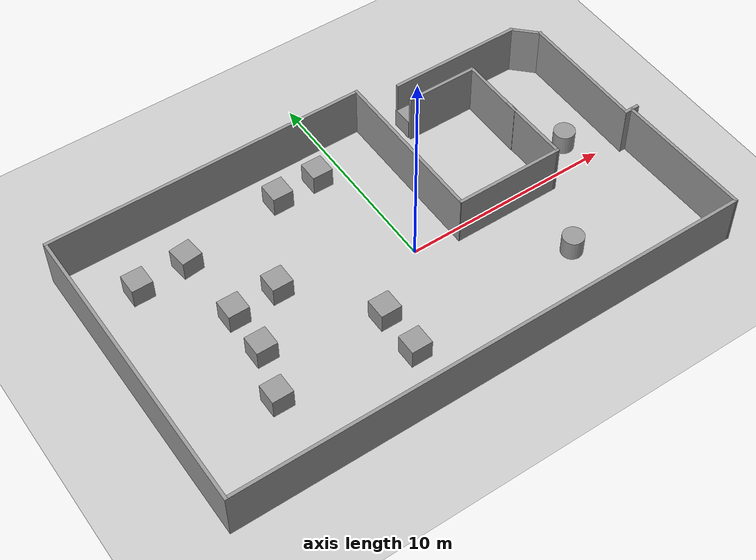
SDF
<sdf version="1.7">
 <world name="default">
  <light name="sun" type="directional">
   <pose>0 0 10 0 -0 0</pose>
   <diffuse>0.8 0.8 0.8 1</diffuse>
   <specular>0.2 0.2 0.2 1</specular>
   <attenuation>
    <range>1000</range>
    <constant>0.9</constant>
    <linear>0.01</linear>
    <quadratic>0.001</quadratic>
   </attenuation>
   <direction>-0.5 0.1 -0.9</direction>
   <spot><inner_angle>0</inner_angle><outer_angle>0</outer_angle><falloff>0</falloff></spot>
  </light>
  <model name="ground_plane">
   <static>1</static>
   <link name="link">
    <collision name="collision">
     <geometry><plane><normal>0 0 1</normal><size>100 100</size></plane></geometry>
     <surface><friction><ode><mu>100</mu><mu2>50</mu2></ode></friction></surface>
    </collision>
    <visual name="visual">
     <cast_shadows>0</cast_shadows>
     <geometry><plane><normal>0 0 1</normal><size>100 100</size></plane></geometry>
     <material>
      <script><uri>file://media/materials/scripts/gazebo.material</uri><name>Gazebo/Grey</name></script>
     </material>
    </visual>
   </link>
  </model>
  <gravity>0 0 -9.8</gravity>
  <magnetic_field>6e-06 2.3e-05 -4.2e-05</magnetic_field>
  <atmosphere type="adiabatic"/>
  <physics type="ode">
   <max_step_size>0.001</max_step_size>
   <real_time_factor>1</real_time_factor>
   <real_time_update_rate>1000</real_time_update_rate>
  </physics>
  <scene><ambient>0.4 0.4 0.4 1</ambient><background>0.7 0.7 0.7 1</background><shadows>1</shadows></scene>
  <audio><device>default</device></audio>
  <spherical_coordinates>
   <surface_model>EARTH_WGS84</surface_model>
   <latitude_deg>0</latitude_deg>
   <longitude_deg>0</longitude_deg>
   <elevation>0</elevation>
   <heading_deg>0</heading_deg>
  </spherical_coordinates>
  <model name="dummy_map">
   <link name="Wall_10">
    <pose>-0.000854 -7.17415 0 0 -0 0</pose>
    <visual name="Wall_10_Visual">
     <pose>0 0 1.25 0 -0 0</pose>
     <geometry><box><size>25 0.15 2.5</size></box></geometry>
     <material>
      <script><uri>file://media/materials/scripts/gazebo.material</uri><name>Gazebo/Grey</name></script>
      <ambient>1 1 1 1</ambient>
      <shader type="pixel"/>
     </material>
     <meta><layer>0</layer></meta>
    </visual>
    <collision name="Wall_10_Collision">
     <pose>0 0 1.25 0 -0 0</pose>
     <geometry><box><size>25 0.15 2.5</size></box></geometry>
     <surface>
      <friction>
       <ode><mu>1</mu><mu2>1</mu2><fdir1>0 0 0</fdir1><slip1>0</slip1><slip2>0</slip2></ode>
       <torsional>
        <coefficient>1</coefficient>
        <patch_radius>0</patch_radius>
        <surface_radius>0</surface_radius>
        <use_patch_radius>1</use_patch_radius>
        <ode><slip>0</slip></ode>
       </torsional>
      </friction>
      <bounce><restitution_coefficient>0</restitution_coefficient><threshold>1e+06</threshold></bounce>
      <contact>
       <collide_without_contact>0</collide_without_contact>
       <collide_without_contact_bitmask>1</collide_without_contact_bitmask>
       <collide_bitmask>1</collide_bitmask>
       <ode>
        <soft_cfm>0</soft_cfm>
        <soft_erp>0.2</soft_erp>
        <kp>1e+13</kp>
        <kd>1</kd>
        <max_vel>0.01</max_vel>
        <min_depth>0</min_depth>
       </ode>
       <bullet>
        <split_impulse>1</split_impulse>
        <split_impulse_penetration_threshold>-0.01</split_impulse_penetration_threshold>
        <soft_cfm>0</soft_cfm>
        <soft_erp>0.2</soft_erp>
        <kp>1e+13</kp>
        <kd>1</kd>
       </bullet>
      </contact>
     </surface>
    </collision>
   </link>
   <link name="Wall_12">
    <pose>-12.4259 0.000855 0 0 -0 1.5708</pose>
    <visual name="Wall_12_Visual">
     <pose>0 0 1.25 0 -0 0</pose>
     <geometry><box><size>14.5 0.15 2.5</size></box></geometry>
     <material>
      <script><uri>file://media/materials/scripts/gazebo.material</uri><name>Gazebo/Grey</name></script>
      <ambient>1 1 1 1</ambient>
      <shader type="pixel"/>
     </material>
     <meta><layer>0</layer></meta>
    </visual>
    <collision name="Wall_12_Collision">
     <pose>0 0 1.25 0 -0 0</pose>
     <geometry><box><size>14.5 0.15 2.5</size></box></geometry>
     <surface>
      <friction>
       <ode><mu>1</mu><mu2>1</mu2><fdir1>0 0 0</fdir1><slip1>0</slip1><slip2>0</slip2></ode>
       <torsional>
        <coefficient>1</coefficient>
        <patch_radius>0</patch_radius>
        <surface_radius>0</surface_radius>
        <use_patch_radius>1</use_patch_radius>
        <ode><slip>0</slip></ode>
       </torsional>
      </friction>
      <bounce><restitution_coefficient>0</restitution_coefficient><threshold>1e+06</threshold></bounce>
      <contact>
       <collide_without_contact>0</collide_without_contact>
       <collide_without_contact_bitmask>1</collide_without_contact_bitmask>
       <collide_bitmask>1</collide_bitmask>
       <ode>
        <soft_cfm>0</soft_cfm>
        <soft_erp>0.2</soft_erp>
        <kp>1e+13</kp>
        <kd>1</kd>
        <max_vel>0.01</max_vel>
        <min_depth>0</min_depth>
       </ode>
       <bullet>
        <split_impulse>1</split_impulse>
        <split_impulse_penetration_threshold>-0.01</split_impulse_penetration_threshold>
        <soft_cfm>0</soft_cfm>
        <soft_erp>0.2</soft_erp>
        <kp>1e+13</kp>
        <kd>1</kd>
       </bullet>
      </contact>
     </surface>
    </collision>
   </link>
   <link name="Wall_13">
    <pose>-4.75085 7.17586 0 0 -0 0</pose>
    <visual name="Wall_13_Visual">
     <pose>0 0 1.25 0 -0 0</pose>
     <geometry><box><size>15.5 0.15 2.5</size></box></geometry>
     <material>
      <script><uri>file://media/materials/scripts/gazebo.material</uri><name>Gazebo/Grey</name></script>
      <ambient>1 1 1 1</ambient>
      <shader type="pixel"/>
     </material>
     <meta><layer>0</layer></meta>
    </visual>
    <collision name="Wall_13_Collision">
     <pose>0 0 1.25 0 -0 0</pose>
     <geometry><box><size>15.5 0.15 2.5</size></box></geometry>
     <surface>
      <friction>
       <ode><mu>1</mu><mu2>1</mu2><fdir1>0 0 0</fdir1><slip1>0</slip1><slip2>0</slip2></ode>
       <torsional>
        <coefficient>1</coefficient>
        <patch_radius>0</patch_radius>
        <surface_radius>0</surface_radius>
        <use_patch_radius>1</use_patch_radius>
        <ode><slip>0</slip></ode>
       </torsional>
      </friction>
      <bounce><restitution_coefficient>0</restitution_coefficient><threshold>1e+06</threshold></bounce>
      <contact>
       <collide_without_contact>0</collide_without_contact>
       <collide_without_contact_bitmask>1</collide_without_contact_bitmask>
       <collide_bitmask>1</collide_bitmask>
       <ode>
        <soft_cfm>0</soft_cfm>
        <soft_erp>0.2</soft_erp>
        <kp>1e+13</kp>
        <kd>1</kd>
        <max_vel>0.01</max_vel>
        <min_depth>0</min_depth>
       </ode>
       <bullet>
        <split_impulse>1</split_impulse>
        <split_impulse_penetration_threshold>-0.01</split_impulse_penetration_threshold>
        <soft_cfm>0</soft_cfm>
        <soft_erp>0.2</soft_erp>
        <kp>1e+13</kp>
        <kd>1</kd>
       </bullet>
      </contact>
     </surface>
    </collision>
   </link>
   <link name="Wall_14">
    <pose>2.92415 3.25086 0 0 0 -1.5708</pose>
    <visual name="Wall_14_Visual">
     <pose>0 0 1.25 0 -0 0</pose>
     <geometry><box><size>8 0.15 2.5</size></box></geometry>
     <material>
      <script><uri>file://media/materials/scripts/gazebo.material</uri><name>Gazebo/Grey</name></script>
      <ambient>1 1 1 1</ambient>
      <shader type="pixel"/>
     </material>
     <meta><layer>0</layer></meta>
    </visual>
    <collision name="Wall_14_Collision">
     <pose>0 0 1.25 0 -0 0</pose>
     <geometry><box><size>8 0.15 2.5</size></box></geometry>
     <surface>
      <friction>
       <ode><mu>1</mu><mu2>1</mu2><fdir1>0 0 0</fdir1><slip1>0</slip1><slip2>0</slip2></ode>
       <torsional>
        <coefficient>1</coefficient>
        <patch_radius>0</patch_radius>
        <surface_radius>0</surface_radius>
        <use_patch_radius>1</use_patch_radius>
        <ode><slip>0</slip></ode>
       </torsional>
      </friction>
      <bounce><restitution_coefficient>0</restitution_coefficient><threshold>1e+06</threshold></bounce>
      <contact>
       <collide_without_contact>0</collide_without_contact>
       <collide_without_contact_bitmask>1</collide_without_contact_bitmask>
       <collide_bitmask>1</collide_bitmask>
       <ode>
        <soft_cfm>0</soft_cfm>
        <soft_erp>0.2</soft_erp>
        <kp>1e+13</kp>
        <kd>1</kd>
        <max_vel>0.01</max_vel>
        <min_depth>0</min_depth>
       </ode>
       <bullet>
        <split_impulse>1</split_impulse>
        <split_impulse_penetration_threshold>-0.01</split_impulse_penetration_threshold>
        <soft_cfm>0</soft_cfm>
        <soft_erp>0.2</soft_erp>
        <kp>1e+13</kp>
        <kd>1</kd>
       </bullet>
      </contact>
     </surface>
    </collision>
   </link>
   <link name="Wall_16">
    <pose>12.3491 -3.92415 0 0 0 -1.54772</pose>
    <visual name="Wall_16_Visual">
     <pose>0 0 1.25 0 -0 0</pose>
     <geometry><box><size>6.65173 0.15 2.5</size></box></geometry>
     <material>
      <script><uri>file://media/materials/scripts/gazebo.material</uri><name>Gazebo/Grey</name></script>
      <ambient>1 1 1 1</ambient>
      <shader type="pixel"/>
     </material>
     <meta><layer>0</layer></meta>
    </visual>
    <collision name="Wall_16_Collision">
     <pose>0 0 1.25 0 -0 0</pose>
     <geometry><box><size>6.65173 0.15 2.5</size></box></geometry>
     <surface>
      <friction>
       <ode><mu>1</mu><mu2>1</mu2><fdir1>0 0 0</fdir1><slip1>0</slip1><slip2>0</slip2></ode>
       <torsional>
        <coefficient>1</coefficient>
        <patch_radius>0</patch_radius>
        <surface_radius>0</surface_radius>
        <use_patch_radius>1</use_patch_radius>
        <ode><slip>0</slip></ode>
       </torsional>
      </friction>
      <bounce><restitution_coefficient>0</restitution_coefficient><threshold>1e+06</threshold></bounce>
      <contact>
       <collide_without_contact>0</collide_without_contact>
       <collide_without_contact_bitmask>1</collide_without_contact_bitmask>
       <collide_bitmask>1</collide_bitmask>
       <ode>
        <soft_cfm>0</soft_cfm>
        <soft_erp>0.2</soft_erp>
        <kp>1e+13</kp>
        <kd>1</kd>
        <max_vel>0.01</max_vel>
        <min_depth>0</min_depth>
       </ode>
       <bullet>
        <split_impulse>1</split_impulse>
        <split_impulse_penetration_threshold>-0.01</split_impulse_penetration_threshold>
        <soft_cfm>0</soft_cfm>
        <soft_erp>0.2</soft_erp>
        <kp>1e+13</kp>
        <kd>1</kd>
       </bullet>
      </contact>
     </surface>
    </collision>
   </link>
   <static>1</static>
   <pose>-0.944575 0.1669 0 0 -0 0</pose>
  </model>
  <model name="unit_box">
   <pose>-10.7649 4.75685 0.5 0 -0 6.3e-05</pose>
   <link name="link">
    <inertial>
     <mass>1</mass>
     <inertia>
      <ixx>0.166667</ixx>
      <ixy>0</ixy>
      <ixz>0</ixz>
      <iyy>0.166667</iyy>
      <iyz>0</iyz>
      <izz>0.166667</izz>
     </inertia>
    </inertial>
    <collision name="collision"><geometry><box><size>1 1 1</size></box></geometry></collision>
    <visual name="visual">
     <geometry><box><size>1 1 1</size></box></geometry>
     <material>
      <script><name>Gazebo/Grey</name><uri>file://media/materials/scripts/gazebo.material</uri></script>
     </material>
    </visual>
   </link>
  </model>
  <model name="unit_box_0">
   <pose>-8.16728 1.35199 0.5 0 -0 6.3e-05</pose>
   <link name="link">
    <inertial>
     <mass>1</mass>
     <inertia>
      <ixx>0.166667</ixx>
      <ixy>0</ixy>
      <ixz>0</ixz>
      <iyy>0.166667</iyy>
      <iyz>0</iyz>
      <izz>0.166667</izz>
     </inertia>
    </inertial>
    <collision name="collision"><geometry><box><size>1 1 1</size></box></geometry></collision>
    <visual name="visual">
     <geometry><box><size>1 1 1</size></box></geometry>
     <material>
      <script><name>Gazebo/Grey</name><uri>file://media/materials/scripts/gazebo.material</uri></script>
     </material>
    </visual>
   </link>
  </model>
  <model name="unit_box_0_clone">
   <pose>-8.8825 -3.14275 0.5 0 -0 6.3e-05</pose>
   <link name="link">
    <inertial>
     <mass>1</mass>
     <inertia>
      <ixx>0.166667</ixx>
      <ixy>0</ixy>
      <ixz>0</ixz>
      <iyy>0.166667</iyy>
      <iyz>0</iyz>
      <izz>0.166667</izz>
     </inertia>
    </inertial>
    <collision name="collision"><geometry><box><size>1 1 1</size></box></geometry></collision>
    <visual name="visual">
     <geometry><box><size>1 1 1</size></box></geometry>
     <material>
      <script><name>Gazebo/Grey</name><uri>file://media/materials/scripts/gazebo.material</uri></script>
     </material>
    </visual>
   </link>
  </model>
  <model name="unit_box_0_clone_0">
   <pose>-3.03964 -2.15228 0.5 0 -0 6.3e-05</pose>
   <link name="link">
    <inertial>
     <mass>1</mass>
     <inertia>
      <ixx>0.166667</ixx>
      <ixy>0</ixy>
      <ixz>0</ixz>
      <iyy>0.166667</iyy>
      <iyz>0</iyz>
      <izz>0.166667</izz>
     </inertia>
    </inertial>
    <collision name="collision"><geometry><box><size>1 1 1</size></box></geometry></collision>
    <visual name="visual">
     <geometry><box><size>1 1 1</size></box></geometry>
     <material>
      <script><name>Gazebo/Grey</name><uri>file://media/materials/scripts/gazebo.material</uri></script>
     </material>
    </visual>
   </link>
  </model>
  <model name="unit_box_0_clone_1">
   <pose>-3.34516 5.65193 0.5 0 -0 6.3e-05</pose>
   <link name="link">
    <inertial>
     <mass>1</mass>
     <inertia>
      <ixx>0.166667</ixx>
      <ixy>0</ixy>
      <ixz>0</ixz>
      <iyy>0.166667</iyy>
      <iyz>0</iyz>
      <izz>0.166667</izz>
     </inertia>
    </inertial>
    <collision name="collision"><geometry><box><size>1 1 1</size></box></geometry></collision>
    <visual name="visual">
     <geometry><box><size>1 1 1</size></box></geometry>
     <material>
      <script><name>Gazebo/Grey</name><uri>file://media/materials/scripts/gazebo.material</uri></script>
     </material>
    </visual>
   </link>
  </model>
  <model name="dummy2_world_edit">
   <link name="Wall_11">
    <pose>1.08314 3.54175 0 0 -0 0</pose>
    <visual name="Wall_11_Visual">
     <pose>0 0 1.25 0 -0 0</pose>
     <geometry><box><size>6.5 0.15 2.5</size></box></geometry>
     <material>
      <script><uri>file://media/materials/scripts/gazebo.material</uri><name>Gazebo/Grey</name></script>
      <ambient>1 1 1 1</ambient>
      <shader type="pixel"/>
     </material>
     <meta><layer>0</layer></meta>
    </visual>
    <collision name="Wall_11_Collision">
     <pose>0 0 1.25 0 -0 0</pose>
     <geometry><box><size>6.5 0.15 2.5</size></box></geometry>
     <surface>
      <friction>
       <ode><mu>1</mu><mu2>1</mu2><fdir1>0 0 0</fdir1><slip1>0</slip1><slip2>0</slip2></ode>
       <torsional>
        <coefficient>1</coefficient>
        <patch_radius>0</patch_radius>
        <surface_radius>0</surface_radius>
        <use_patch_radius>1</use_patch_radius>
        <ode><slip>0</slip></ode>
       </torsional>
      </friction>
      <bounce><restitution_coefficient>0</restitution_coefficient><threshold>1e+06</threshold></bounce>
      <contact>
       <collide_without_contact>0</collide_without_contact>
       <collide_without_contact_bitmask>1</collide_without_contact_bitmask>
       <collide_bitmask>1</collide_bitmask>
       <ode>
        <soft_cfm>0</soft_cfm>
        <soft_erp>0.2</soft_erp>
        <kp>1e+13</kp>
        <kd>1</kd>
        <max_vel>0.01</max_vel>
        <min_depth>0</min_depth>
       </ode>
       <bullet>
        <split_impulse>1</split_impulse>
        <split_impulse_penetration_threshold>-0.01</split_impulse_penetration_threshold>
        <soft_cfm>0</soft_cfm>
        <soft_erp>0.2</soft_erp>
        <kp>1e+13</kp>
        <kd>1</kd>
       </bullet>
      </contact>
     </surface>
    </collision>
   </link>
   <link name="Wall_13">
    <pose>4.73543 3.06446 0 0 0 -0.785398</pose>
    <visual name="Wall_13_Visual">
     <pose>0 0 1.25 0 -0 0</pose>
     <geometry><box><size>1.5 0.15 2.5</size></box></geometry>
     <material>
      <script><uri>file://media/materials/scripts/gazebo.material</uri><name>Gazebo/Grey</name></script>
      <ambient>1 1 1 1</ambient>
      <shader type="pixel"/>
     </material>
     <meta><layer>0</layer></meta>
    </visual>
    <collision name="Wall_13_Collision">
     <pose>0 0 1.25 0 -0 0</pose>
     <geometry><box><size>1.5 0.15 2.5</size></box></geometry>
     <surface>
      <friction>
       <ode><mu>1</mu><mu2>1</mu2><fdir1>0 0 0</fdir1><slip1>0</slip1><slip2>0</slip2></ode>
       <torsional>
        <coefficient>1</coefficient>
        <patch_radius>0</patch_radius>
        <surface_radius>0</surface_radius>
        <use_patch_radius>1</use_patch_radius>
        <ode><slip>0</slip></ode>
       </torsional>
      </friction>
      <bounce><restitution_coefficient>0</restitution_coefficient><threshold>1e+06</threshold></bounce>
      <contact>
       <collide_without_contact>0</collide_without_contact>
       <collide_without_contact_bitmask>1</collide_without_contact_bitmask>
       <collide_bitmask>1</collide_bitmask>
       <ode>
        <soft_cfm>0</soft_cfm>
        <soft_erp>0.2</soft_erp>
        <kp>1e+13</kp>
        <kd>1</kd>
        <max_vel>0.01</max_vel>
        <min_depth>0</min_depth>
       </ode>
       <bullet>
        <split_impulse>1</split_impulse>
        <split_impulse_penetration_threshold>-0.01</split_impulse_penetration_threshold>
        <soft_cfm>0</soft_cfm>
        <soft_erp>0.2</soft_erp>
        <kp>1e+13</kp>
        <kd>1</kd>
       </bullet>
      </contact>
     </surface>
    </collision>
   </link>
   <link name="Wall_14">
    <pose>5.21273 -0.46284 0 0 0 -1.5708</pose>
    <visual name="Wall_14_Visual">
     <pose>0 0 1.25 0 -0 0</pose>
     <geometry><box><size>6.25 0.15 2.5</size></box></geometry>
     <material>
      <script><uri>file://media/materials/scripts/gazebo.material</uri><name>Gazebo/Grey</name></script>
      <ambient>1 1 1 1</ambient>
      <shader type="pixel"/>
     </material>
     <meta><layer>0</layer></meta>
    </visual>
    <collision name="Wall_14_Collision">
     <pose>0 0 1.25 0 -0 0</pose>
     <geometry><box><size>6.25 0.15 2.5</size></box></geometry>
     <surface>
      <friction>
       <ode><mu>1</mu><mu2>1</mu2><fdir1>0 0 0</fdir1><slip1>0</slip1><slip2>0</slip2></ode>
       <torsional>
        <coefficient>1</coefficient>
        <patch_radius>0</patch_radius>
        <surface_radius>0</surface_radius>
        <use_patch_radius>1</use_patch_radius>
        <ode><slip>0</slip></ode>
       </torsional>
      </friction>
      <bounce><restitution_coefficient>0</restitution_coefficient><threshold>1e+06</threshold></bounce>
      <contact>
       <collide_without_contact>0</collide_without_contact>
       <collide_without_contact_bitmask>1</collide_without_contact_bitmask>
       <collide_bitmask>1</collide_bitmask>
       <ode>
        <soft_cfm>0</soft_cfm>
        <soft_erp>0.2</soft_erp>
        <kp>1e+13</kp>
        <kd>1</kd>
        <max_vel>0.01</max_vel>
        <min_depth>0</min_depth>
       </ode>
       <bullet>
        <split_impulse>1</split_impulse>
        <split_impulse_penetration_threshold>-0.01</split_impulse_penetration_threshold>
        <soft_cfm>0</soft_cfm>
        <soft_erp>0.2</soft_erp>
        <kp>1e+13</kp>
        <kd>1</kd>
       </bullet>
      </contact>
     </surface>
    </collision>
   </link>
   <link name="Wall_15">
    <pose>5.51273 -3.51284 0 0 -0 0</pose>
    <visual name="Wall_15_Visual">
     <pose>0 0 1.25 0 -0 0</pose>
     <geometry><box><size>0.75 0.15 2.5</size></box></geometry>
     <material>
      <script><uri>file://media/materials/scripts/gazebo.material</uri><name>Gazebo/Grey</name></script>
      <ambient>1 1 1 1</ambient>
      <shader type="pixel"/>
     </material>
     <meta><layer>0</layer></meta>
    </visual>
    <collision name="Wall_15_Collision">
     <pose>0 0 1.25 0 -0 0</pose>
     <geometry><box><size>0.75 0.15 2.5</size></box></geometry>
     <surface>
      <friction>
       <ode><mu>1</mu><mu2>1</mu2><fdir1>0 0 0</fdir1><slip1>0</slip1><slip2>0</slip2></ode>
       <torsional>
        <coefficient>1</coefficient>
        <patch_radius>0</patch_radius>
        <surface_radius>0</surface_radius>
        <use_patch_radius>1</use_patch_radius>
        <ode><slip>0</slip></ode>
       </torsional>
      </friction>
      <bounce><restitution_coefficient>0</restitution_coefficient><threshold>1e+06</threshold></bounce>
      <contact>
       <collide_without_contact>0</collide_without_contact>
       <collide_without_contact_bitmask>1</collide_without_contact_bitmask>
       <collide_bitmask>1</collide_bitmask>
       <ode>
        <soft_cfm>0</soft_cfm>
        <soft_erp>0.2</soft_erp>
        <kp>1e+13</kp>
        <kd>1</kd>
        <max_vel>0.01</max_vel>
        <min_depth>0</min_depth>
       </ode>
       <bullet>
        <split_impulse>1</split_impulse>
        <split_impulse_penetration_threshold>-0.01</split_impulse_penetration_threshold>
        <soft_cfm>0</soft_cfm>
        <soft_erp>0.2</soft_erp>
        <kp>1e+13</kp>
        <kd>1</kd>
       </bullet>
      </contact>
     </surface>
    </collision>
   </link>
   <link name="Wall_3">
    <pose>-1.25773 -3.57207 0 0 -0 0</pose>
    <visual name="Wall_3_Visual">
     <pose>0 0 1.25 0 -0 0</pose>
     <geometry><box><size>5.25 0.15 2.5</size></box></geometry>
     <material>
      <script><uri>file://media/materials/scripts/gazebo.material</uri><name>Gazebo/Grey</name></script>
      <ambient>1 1 1 1</ambient>
      <shader type="pixel"/>
     </material>
     <meta><layer>0</layer></meta>
    </visual>
    <collision name="Wall_3_Collision">
     <pose>0 0 1.25 0 -0 0</pose>
     <geometry><box><size>5.25 0.15 2.5</size></box></geometry>
     <surface>
      <friction>
       <ode><mu>1</mu><mu2>1</mu2><fdir1>0 0 0</fdir1><slip1>0</slip1><slip2>0</slip2></ode>
       <torsional>
        <coefficient>1</coefficient>
        <patch_radius>0</patch_radius>
        <surface_radius>0</surface_radius>
        <use_patch_radius>1</use_patch_radius>
        <ode><slip>0</slip></ode>
       </torsional>
      </friction>
      <bounce><restitution_coefficient>0</restitution_coefficient><threshold>1e+06</threshold></bounce>
      <contact>
       <collide_without_contact>0</collide_without_contact>
       <collide_without_contact_bitmask>1</collide_without_contact_bitmask>
       <collide_bitmask>1</collide_bitmask>
       <ode>
        <soft_cfm>0</soft_cfm>
        <soft_erp>0.2</soft_erp>
        <kp>1e+13</kp>
        <kd>1</kd>
        <max_vel>0.01</max_vel>
        <min_depth>0</min_depth>
       </ode>
       <bullet>
        <split_impulse>1</split_impulse>
        <split_impulse_penetration_threshold>-0.01</split_impulse_penetration_threshold>
        <soft_cfm>0</soft_cfm>
        <soft_erp>0.2</soft_erp>
        <kp>1e+13</kp>
        <kd>1</kd>
       </bullet>
      </contact>
     </surface>
    </collision>
   </link>
   <link name="Wall_5">
    <pose>1.2752 -1.86516 0 0 0 -1.5608</pose>
    <visual name="Wall_5_Visual">
     <pose>0 0 1.25 0 -0 0</pose>
     <geometry><box><size>3.564 0.15 2.5</size></box></geometry>
     <material>
      <script><uri>file://media/materials/scripts/gazebo.material</uri><name>Gazebo/Grey</name></script>
      <ambient>1 1 1 1</ambient>
      <shader type="pixel"/>
     </material>
     <meta><layer>0</layer></meta>
    </visual>
    <collision name="Wall_5_Collision">
     <pose>0 0 1.25 0 -0 0</pose>
     <geometry><box><size>3.564 0.15 2.5</size></box></geometry>
     <surface>
      <friction>
       <ode><mu>1</mu><mu2>1</mu2><fdir1>0 0 0</fdir1><slip1>0</slip1><slip2>0</slip2></ode>
       <torsional>
        <coefficient>1</coefficient>
        <patch_radius>0</patch_radius>
        <surface_radius>0</surface_radius>
        <use_patch_radius>1</use_patch_radius>
        <ode><slip>0</slip></ode>
       </torsional>
      </friction>
      <bounce><restitution_coefficient>0</restitution_coefficient><threshold>1e+06</threshold></bounce>
      <contact>
       <collide_without_contact>0</collide_without_contact>
       <collide_without_contact_bitmask>1</collide_without_contact_bitmask>
       <collide_bitmask>1</collide_bitmask>
       <ode>
        <soft_cfm>0</soft_cfm>
        <soft_erp>0.2</soft_erp>
        <kp>1e+13</kp>
        <kd>1</kd>
        <max_vel>0.01</max_vel>
        <min_depth>0</min_depth>
       </ode>
       <bullet>
        <split_impulse>1</split_impulse>
        <split_impulse_penetration_threshold>-0.01</split_impulse_penetration_threshold>
        <soft_cfm>0</soft_cfm>
        <soft_erp>0.2</soft_erp>
        <kp>1e+13</kp>
        <kd>1</kd>
       </bullet>
      </contact>
     </surface>
    </collision>
   </link>
   <link name="Wall_8">
    <pose>1.24669 0.92112 0 0 -0 1.5708</pose>
    <visual name="Wall_8_Visual">
     <pose>0 0 1.25 0 -0 0</pose>
     <geometry><box><size>3.25 0.15 2.5</size></box></geometry>
     <material>
      <script><uri>file://media/materials/scripts/gazebo.material</uri><name>Gazebo/Grey</name></script>
      <ambient>1 1 1 1</ambient>
      <shader type="pixel"/>
     </material>
     <meta><layer>0</layer></meta>
    </visual>
    <collision name="Wall_8_Collision">
     <pose>0 0 1.25 0 -0 0</pose>
     <geometry><box><size>3.25 0.15 2.5</size></box></geometry>
     <surface>
      <friction>
       <ode><mu>1</mu><mu2>1</mu2><fdir1>0 0 0</fdir1><slip1>0</slip1><slip2>0</slip2></ode>
       <torsional>
        <coefficient>1</coefficient>
        <patch_radius>0</patch_radius>
        <surface_radius>0</surface_radius>
        <use_patch_radius>1</use_patch_radius>
        <ode><slip>0</slip></ode>
       </torsional>
      </friction>
      <bounce><restitution_coefficient>0</restitution_coefficient><threshold>1e+06</threshold></bounce>
      <contact>
       <collide_without_contact>0</collide_without_contact>
       <collide_without_contact_bitmask>1</collide_without_contact_bitmask>
       <collide_bitmask>1</collide_bitmask>
       <ode>
        <soft_cfm>0</soft_cfm>
        <soft_erp>0.2</soft_erp>
        <kp>1e+13</kp>
        <kd>1</kd>
        <max_vel>0.01</max_vel>
        <min_depth>0</min_depth>
       </ode>
       <bullet>
        <split_impulse>1</split_impulse>
        <split_impulse_penetration_threshold>-0.01</split_impulse_penetration_threshold>
        <soft_cfm>0</soft_cfm>
        <soft_erp>0.2</soft_erp>
        <kp>1e+13</kp>
        <kd>1</kd>
       </bullet>
      </contact>
     </surface>
    </collision>
   </link>
   <link name="Wall_9">
    <pose>-0.436864 2.50092 0 0 -0 3.14159</pose>
    <inertial>
     <mass>1</mass>
     <inertia><ixx>1</ixx><ixy>0</ixy><ixz>0</ixz><iyy>1</iyy><iyz>0</iyz><izz>1</izz></inertia>
    </inertial>
    <visual name="Wall_9_Visual">
     <pose>0 0 1.25 0 -0 0</pose>
     <geometry><box><size>3.5 0.15 2.5</size></box></geometry>
     <material>
      <script><uri>file://media/materials/scripts/gazebo.material</uri><name>Gazebo/Grey</name></script>
      <ambient>1 1 1 1</ambient>
      <shader type="pixel"><normal_map>__default__</normal_map></shader>
      <diffuse>0.7 0.7 0.7 1</diffuse>
      <specular>0.01 0.01 0.01 1</specular>
      <emissive>0 0 0 1</emissive>
     </material>
     <meta><layer>0</layer></meta>
    </visual>
    <collision name="Wall_9_Collision">
     <pose>0 0 1.25 0 -0 0</pose>
     <geometry><box><size>3.5 0.15 2.5</size></box></geometry>
     <surface>
      <friction>
       <ode><mu>1</mu><mu2>1</mu2><fdir1>0 0 0</fdir1><slip1>0</slip1><slip2>0</slip2></ode>
       <torsional>
        <coefficient>1</coefficient>
        <patch_radius>0</patch_radius>
        <surface_radius>0</surface_radius>
        <use_patch_radius>1</use_patch_radius>
        <ode><slip>0</slip></ode>
       </torsional>
      </friction>
      <bounce><restitution_coefficient>0</restitution_coefficient><threshold>1e+06</threshold></bounce>
      <contact>
       <collide_without_contact>0</collide_without_contact>
       <collide_without_contact_bitmask>1</collide_without_contact_bitmask>
       <collide_bitmask>1</collide_bitmask>
       <ode>
        <soft_cfm>0</soft_cfm>
        <soft_erp>0.2</soft_erp>
        <kp>1e+13</kp>
        <kd>1</kd>
        <max_vel>0.01</max_vel>
        <min_depth>0</min_depth>
       </ode>
       <bullet>
        <split_impulse>1</split_impulse>
        <split_impulse_penetration_threshold>-0.01</split_impulse_penetration_threshold>
        <soft_cfm>0</soft_cfm>
        <soft_erp>0.2</soft_erp>
        <kp>1e+13</kp>
        <kd>1</kd>
       </bullet>
      </contact>
     </surface>
    </collision>
   </link>
   <link name="link_0">
    <inertial>
     <mass>1</mass>
     <inertia><ixx>0.145833</ixx><ixy>0</ixy><ixz>0</ixz><iyy>0.145833</iyy><iyz>0</iyz><izz>0.125</izz></inertia>
    </inertial>
    <pose>-0.255869 -6.81088 0.5 0 -0 0</pose>
    <visual name="visual">
     <geometry><cylinder><radius>0.5</radius><length>1</length></cylinder></geometry>
     <material>
      <lighting>1</lighting>
      <script><uri>file://media/materials/scripts/gazebo.material</uri><name>Gazebo/Grey</name></script>
      <shader type="pixel"/>
     </material>
    </visual>
    <collision name="collision">
     <geometry><cylinder><radius>0.5</radius><length>1</length></cylinder></geometry>
     <surface>
      <friction>
       <ode><mu>1</mu><mu2>1</mu2><fdir1>0 0 0</fdir1><slip1>0</slip1><slip2>0</slip2></ode>
       <torsional>
        <coefficient>1</coefficient>
        <patch_radius>0</patch_radius>
        <surface_radius>0</surface_radius>
        <use_patch_radius>1</use_patch_radius>
        <ode><slip>0</slip></ode>
       </torsional>
      </friction>
      <bounce><restitution_coefficient>0</restitution_coefficient><threshold>1e+06</threshold></bounce>
      <contact>
       <collide_without_contact>0</collide_without_contact>
       <collide_without_contact_bitmask>1</collide_without_contact_bitmask>
       <collide_bitmask>1</collide_bitmask>
       <ode>
        <soft_cfm>0</soft_cfm>
        <soft_erp>0.2</soft_erp>
        <kp>1e+13</kp>
        <kd>1</kd>
        <max_vel>0.01</max_vel>
        <min_depth>0</min_depth>
       </ode>
       <bullet>
        <split_impulse>1</split_impulse>
        <split_impulse_penetration_threshold>-0.01</split_impulse_penetration_threshold>
        <soft_cfm>0</soft_cfm>
        <soft_erp>0.2</soft_erp>
        <kp>1e+13</kp>
        <kd>1</kd>
       </bullet>
      </contact>
     </surface>
    </collision>
   </link>
   <link name="link_0_0">
    <inertial>
     <mass>1</mass>
     <inertia>
      <ixx>0.166667</ixx>
      <ixy>0</ixy>
      <ixz>0</ixz>
      <iyy>0.166667</iyy>
      <iyz>0</iyz>
      <izz>0.166667</izz>
     </inertia>
    </inertial>
    <pose>-1.71844 3.05943 0.5 0 -0 0</pose>
    <visual name="visual">
     <geometry><box><size>1 1 1</size></box></geometry>
     <material>
      <lighting>1</lighting>
      <script><uri>file://media/materials/scripts/gazebo.material</uri><name>Gazebo/Grey</name></script>
      <shader type="pixel"/>
     </material>
    </visual>
    <collision name="collision">
     <geometry><box><size>1 1 1</size></box></geometry>
     <surface>
      <friction>
       <ode><mu>1</mu><mu2>1</mu2><fdir1>0 0 0</fdir1><slip1>0</slip1><slip2>0</slip2></ode>
       <torsional>
        <coefficient>1</coefficient>
        <patch_radius>0</patch_radius>
        <surface_radius>0</surface_radius>
        <use_patch_radius>1</use_patch_radius>
        <ode><slip>0</slip></ode>
       </torsional>
      </friction>
      <bounce><restitution_coefficient>0</restitution_coefficient><threshold>1e+06</threshold></bounce>
      <contact>
       <collide_without_contact>0</collide_without_contact>
       <collide_without_contact_bitmask>1</collide_without_contact_bitmask>
       <collide_bitmask>1</collide_bitmask>
       <ode>
        <soft_cfm>0</soft_cfm>
        <soft_erp>0.2</soft_erp>
        <kp>1e+13</kp>
        <kd>1</kd>
        <max_vel>0.01</max_vel>
        <min_depth>0</min_depth>
       </ode>
       <bullet>
        <split_impulse>1</split_impulse>
        <split_impulse_penetration_threshold>-0.01</split_impulse_penetration_threshold>
        <soft_cfm>0</soft_cfm>
        <soft_erp>0.2</soft_erp>
        <kp>1e+13</kp>
        <kd>1</kd>
       </bullet>
      </contact>
     </surface>
    </collision>
   </link>
   <link name="link_1">
    <inertial>
     <mass>1</mass>
     <inertia><ixx>0.145833</ixx><ixy>0</ixy><ixz>0</ixz><iyy>0.145833</iyy><iyz>0</iyz><izz>0.125</izz></inertia>
    </inertial>
    <pose>3.25551 -1.82882 0.5 0 -0 0</pose>
    <visual name="visual">
     <geometry><cylinder><radius>0.5</radius><length>1</length></cylinder></geometry>
     <material>
      <lighting>1</lighting>
      <script><uri>file://media/materials/scripts/gazebo.material</uri><name>Gazebo/Grey</name></script>
      <shader type="pixel"/>
     </material>
    </visual>
    <collision name="collision">
     <geometry><cylinder><radius>0.5</radius><length>1</length></cylinder></geometry>
     <surface>
      <friction>
       <ode><mu>1</mu><mu2>1</mu2><fdir1>0 0 0</fdir1><slip1>0</slip1><slip2>0</slip2></ode>
       <torsional>
        <coefficient>1</coefficient>
        <patch_radius>0</patch_radius>
        <surface_radius>0</surface_radius>
        <use_patch_radius>1</use_patch_radius>
        <ode><slip>0</slip></ode>
       </torsional>
      </friction>
      <bounce><restitution_coefficient>0</restitution_coefficient><threshold>1e+06</threshold></bounce>
      <contact>
       <collide_without_contact>0</collide_without_contact>
       <collide_without_contact_bitmask>1</collide_without_contact_bitmask>
       <collide_bitmask>1</collide_bitmask>
       <ode>
        <soft_cfm>0</soft_cfm>
        <soft_erp>0.2</soft_erp>
        <kp>1e+13</kp>
        <kd>1</kd>
        <max_vel>0.01</max_vel>
        <min_depth>0</min_depth>
       </ode>
       <bullet>
        <split_impulse>1</split_impulse>
        <split_impulse_penetration_threshold>-0.01</split_impulse_penetration_threshold>
        <soft_cfm>0</soft_cfm>
        <soft_erp>0.2</soft_erp>
        <kp>1e+13</kp>
        <kd>1</kd>
       </bullet>
      </contact>
     </surface>
    </collision>
   </link>
   <static>1</static>
   <pose>5.82264 3.05872 0 0 -0 0</pose>
  </model>
  <model name="unit_box_1">
   <pose>-3.03975 -4.31909 0.5 0 0 -0.00035</pose>
   <link name="link">
    <inertial>
     <mass>1</mass>
     <inertia>
      <ixx>0.166667</ixx>
      <ixy>0</ixy>
      <ixz>0</ixz>
      <iyy>0.166667</iyy>
      <iyz>0</iyz>
      <izz>0.166667</izz>
     </inertia>
    </inertial>
    <collision name="collision"><geometry><box><size>1 1 1</size></box></geometry></collision>
    <visual name="visual">
     <geometry><box><size>1 1 1</size></box></geometry>
     <material>
      <script><name>Gazebo/Grey</name><uri>file://media/materials/scripts/gazebo.material</uri></script>
     </material>
    </visual>
   </link>
  </model>
  <model name="unit_box_2">
   <pose>-8.17147 -0.824253 0.5 0 -0 7e-05</pose>
   <link name="link">
    <inertial>
     <mass>1</mass>
     <inertia>
      <ixx>0.166667</ixx>
      <ixy>0</ixy>
      <ixz>0</ixz>
      <iyy>0.166667</iyy>
      <iyz>0</iyz>
      <izz>0.166667</izz>
     </inertia>
    </inertial>
    <collision name="collision"><geometry><box><size>1 1 1</size></box></geometry></collision>
    <visual name="visual">
     <geometry><box><size>1 1 1</size></box></geometry>
     <material>
      <script><name>Gazebo/Grey</name><uri>file://media/materials/scripts/gazebo.material</uri></script>
     </material>
    </visual>
   </link>
  </model>
  <model name="unit_box_3">
   <pose>-1.24949 5.72583 0.5 -0 -0 -0.000347</pose>
   <link name="link">
    <inertial>
     <mass>1</mass>
     <inertia>
      <ixx>0.166667</ixx>
      <ixy>0</ixy>
      <ixz>0</ixz>
      <iyy>0.166667</iyy>
      <iyz>0</iyz>
      <izz>0.166667</izz>
     </inertia>
    </inertial>
    <collision name="collision"><geometry><box><size>1 1 1</size></box></geometry></collision>
    <visual name="visual">
     <geometry><box><size>1 1 1</size></box></geometry>
     <material>
      <script><name>Gazebo/Grey</name><uri>file://media/materials/scripts/gazebo.material</uri></script>
     </material>
    </visual>
   </link>
  </model>
  <model name="unit_box_4">
   <pose>-5.96282 1.50413 0.5 0 0 -0.000249</pose>
   <link name="link">
    <inertial>
     <mass>1</mass>
     <inertia>
      <ixx>0.166667</ixx>
      <ixy>0</ixy>
      <ixz>0</ixz>
      <iyy>0.166667</iyy>
      <iyz>0</iyz>
      <izz>0.166667</izz>
     </inertia>
    </inertial>
    <collision name="collision"><geometry><box><size>1 1 1</size></box></geometry></collision>
    <visual name="visual">
     <geometry><box><size>1 1 1</size></box></geometry>
     <material>
      <script><name>Gazebo/Grey</name><uri>file://media/materials/scripts/gazebo.material</uri></script>
     </material>
    </visual>
   </link>
  </model>
  <model name="unit_box_5">
   <pose>-8.37673 4.85767 0.499994 -1.2e-05 -0 0.104609</pose>
   <link name="link">
    <inertial>
     <mass>1</mass>
     <inertia>
      <ixx>0.166667</ixx>
      <ixy>0</ixy>
      <ixz>0</ixz>
      <iyy>0.166667</iyy>
      <iyz>0</iyz>
      <izz>0.166667</izz>
     </inertia>
    </inertial>
    <collision name="collision"><geometry><box><size>1 1 1</size></box></geometry></collision>
    <visual name="visual">
     <geometry><box><size>1 1 1</size></box></geometry>
     <material>
      <script><name>Gazebo/Grey</name><uri>file://media/materials/scripts/gazebo.material</uri></script>
     </material>
    </visual>
   </link>
  </model>
 </world>
</sdf>
